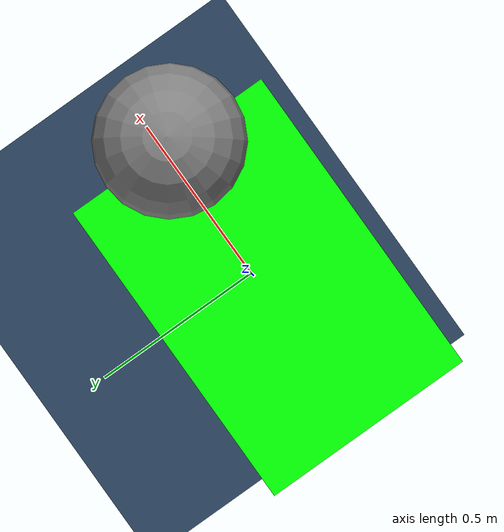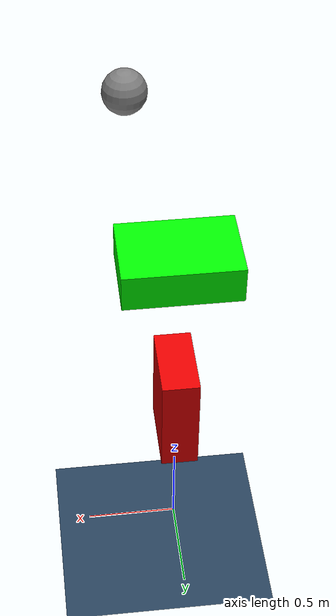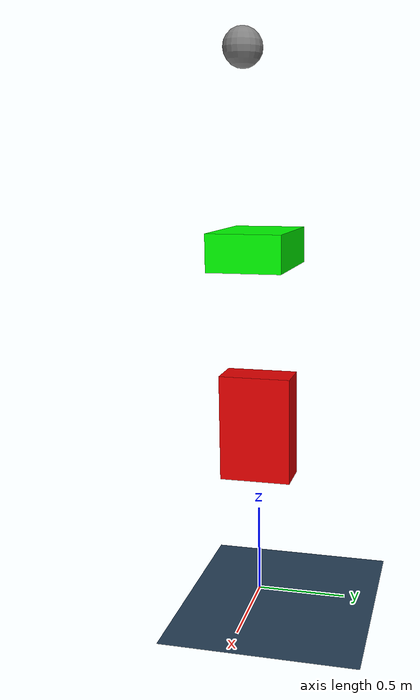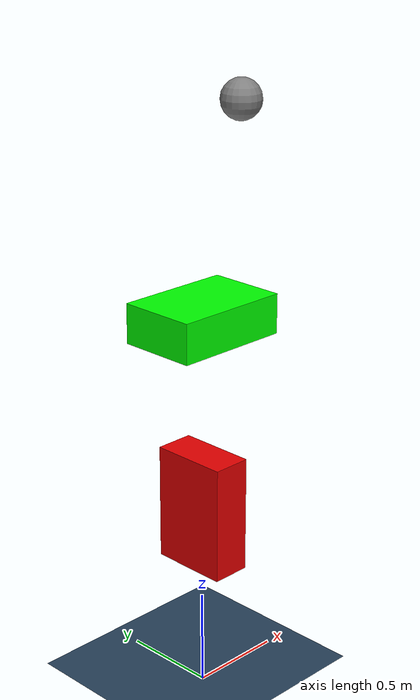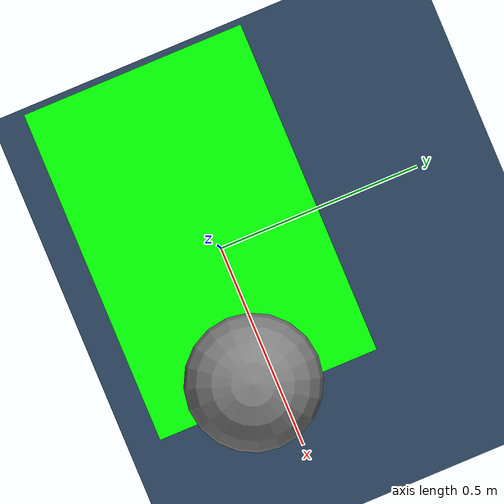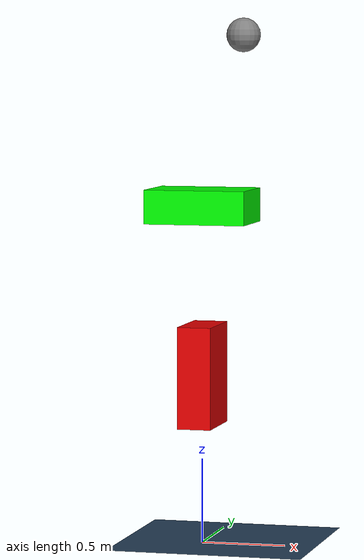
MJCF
<mujoco>
    <compiler angle="radian" />
    <visual>
        <headlight ambient=".5 .5 .5" />
    </visual>

    <asset>
        <material name="white" rgba="1 1 1 1" />
        <material name="green" rgba="0 1 0 1" />
        <material name="blue" rgba="0 0 1 1" />
        <material name="custom1" rgba=".5 .5 .5 1" />
        <texture name="grid" type="2d" builtin="checker" width="512" height="512" rgb1=".1 .2 .3" rgb2=".2 .3 .4"/>
        <material name="grid" texture="grid" texrepeat="1 1" texuniform="true" reflectance=".2"/>
    </asset>

    <option gravity="0 0 -0.5" timestep="0.001" />
    <worldbody>
        <light diffuse="0.5 0.5 0.5" pos="0 0 3" dir="0 0 -1" />
        <geom name="floor" size="0 0 .05" type="plane" material="grid" condim="3" />
        <body pos="0 0 1" quat="1 0 0 0">
            <joint type="free" />
            <inertial pos="0 0 0" mass="1" diaginertia="0.001 0.001 0.001" />
            <geom type="box" size=".1 .2 .3" rgba=".9 0 0 1" />
        </body>

        <body pos="0 0 2" euler="0 1.571 0">
            <joint type="free" />
            <inertial pos="0 0 0" mass="1" diaginertia="0.001 0.001 0.001" />
            <geom type="box" size=".1 .2 .3" material="green" />
        </body>

        <body pos="0.25 0 3" quat="1 0 0 0">
            <joint type="free" />
            <inertial pos="0 0 0" mass="1" diaginertia="0.001 0.001 0.001" />
            <geom type="sphere" size=".1" material="custom1" />
        </body>

    </worldbody>
</mujoco>
